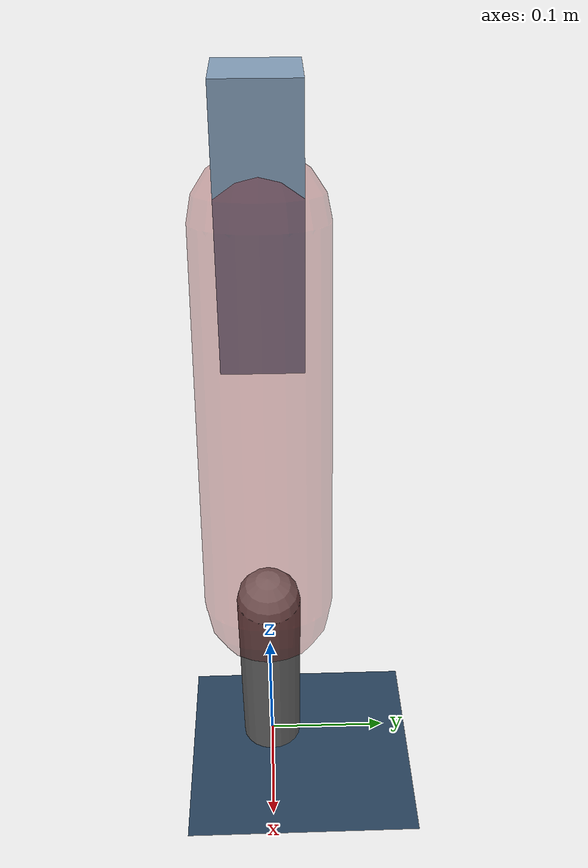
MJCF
<mujoco model="Hopper2D">
	<compiler inertiafromgeom="true" angle="radian" />
	<option timestep="0.001" integrator="implicit" cone="elliptic" solver="Newton" tolerance="1e-10" />

	<default>
		<geom contype="1" conaffinity="1" condim="3" friction="2 0.005 0.0001" solref="0.005 1" />
		<joint limited="true" damping="0.1" />
	</default>

	<asset>
		<texture name="skybox" type="skybox" builtin="gradient" rgb1=".4 .6 .8" rgb2="0 0 0" width="800" height="800" />
		<texture name="grid" type="2d" builtin="checker" rgb1=".1 .2 .3" rgb2=".2 .3 .4" width="300" height="300" mark="edge" markrgb=".2 .3 .4" />
		<material name="ground" texture="grid" texrepeat="1 1" texuniform="true" reflectance="0.1" />
		<material name="leg" rgba="0.5 0.6 0.7 1" />
	</asset>

	<worldbody>

		<geom name="floor" type="plane" size="5 5 0.25" material="ground" />

		<light directional="false" diffuse="0.8 0.8 0.8" specular="0.3 0.3 0.3" pos="0 0 2" dir="0 0 -1" />
		<light mode="targetbodycom" target="base" directional="false" diffuse="0.8 0.8 0.8" specular="0.3 0.3 0.3" pos="0 0 2" dir="0 0 -1" />

		<camera name="fixed" pos="0 -2 1" xyaxes="1 0 0 0 0 1" />
		<camera name="tracking" mode="trackcom" pos="0 -3 1" />

		<body name="root" pos="0 0 0.47677908938156355">
			<joint name="slide_x" type="slide" axis="1 0 0" range="-100 100" />
			<joint name="slide_z" type="slide" axis="0 0 1" range="0 10" />

			<body name="base" pos="0 0 0">
				<geom name="torso" type="box" size="0.03 0.03 0.1" mass="2.579" material="leg" />

				<body name="link1" pos="0 0 0" euler="0 1.4059256902551809 0">
					<joint type="hinge" axis="0 -1 0" pos="0 0 0" name="hinge1" limited="true" range="-3.14 3.14" stiffness="0" damping="0.1" />
					<geom name="thigh" type="capsule" fromto="0 0 0 0.2926023702651106 0 0" size="0.05" rgba="0.5 0 0 0.3" mass="0.9688263997157986" />

					<body name="link2" pos="0.2926023702651106 0 0" euler="0 0.4147813100465794 0">
						<joint type="hinge" axis="0 -1 0" pos="0 0 0" name="hinge2" limited="true" range="-3.14 3.14" stiffness="0" damping="0.1" />
						<geom name="shank" type="capsule" fromto="0 0 0 0.19417671911645296 0 0" size="0.025" mass="0.3959590472048076" />

					</body>
				</body>
			</body>
		</body>
	</worldbody>

	<actuator>
		<motor name="torque1" joint="hinge1" ctrlrange="-70.34540783402242 70.34540783402242" ctrllimited="true" gear="1" />
		<motor name="torque2" joint="hinge2" ctrlrange="-63.68481773923806 63.68481773923806" ctrllimited="true" gear="1" />
	</actuator>
</mujoco>
